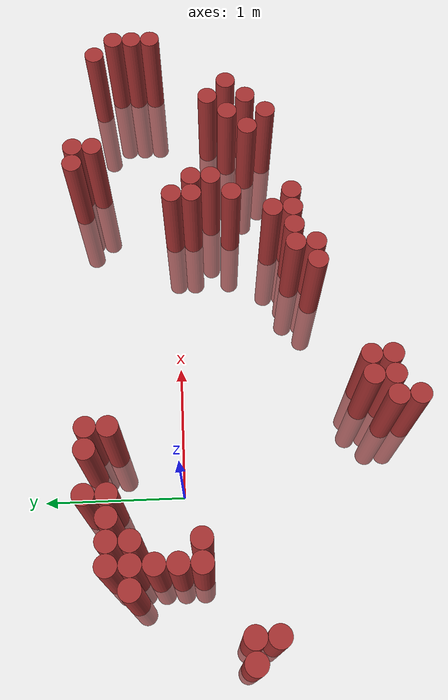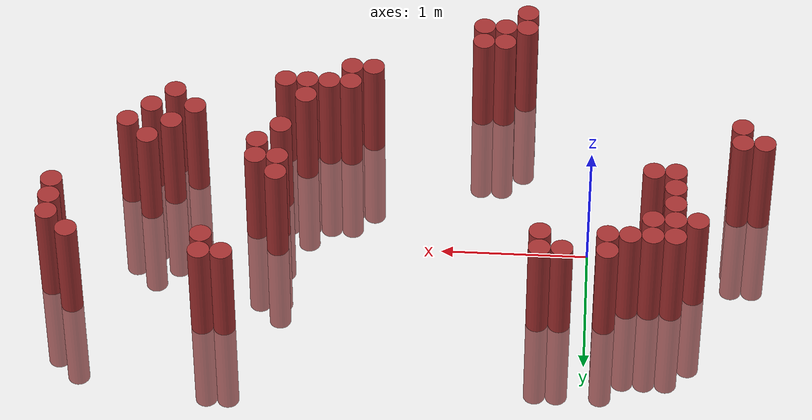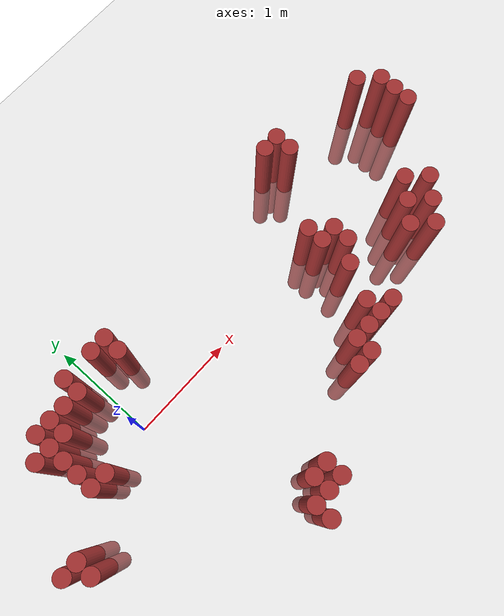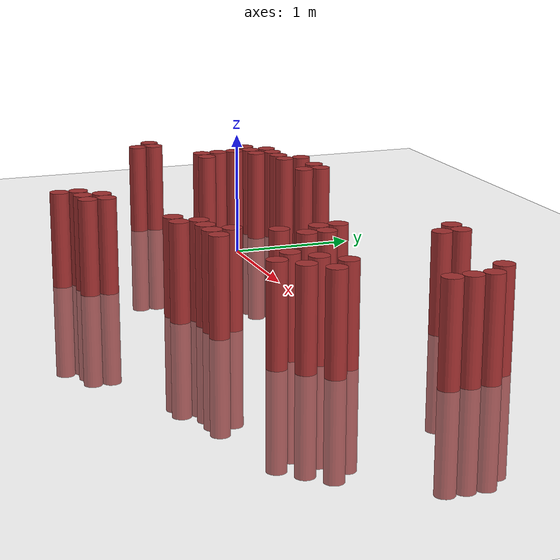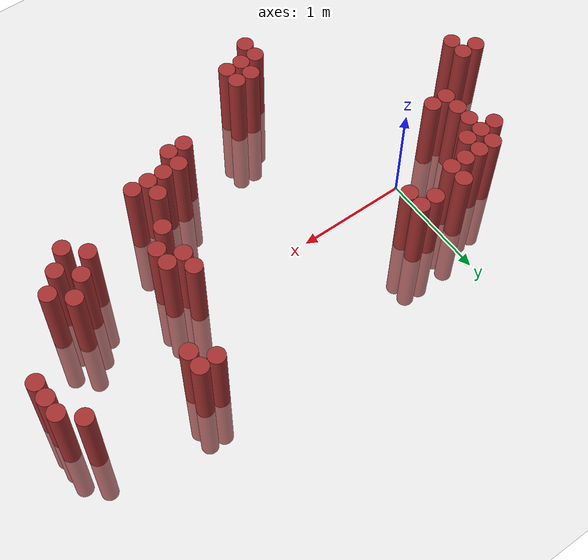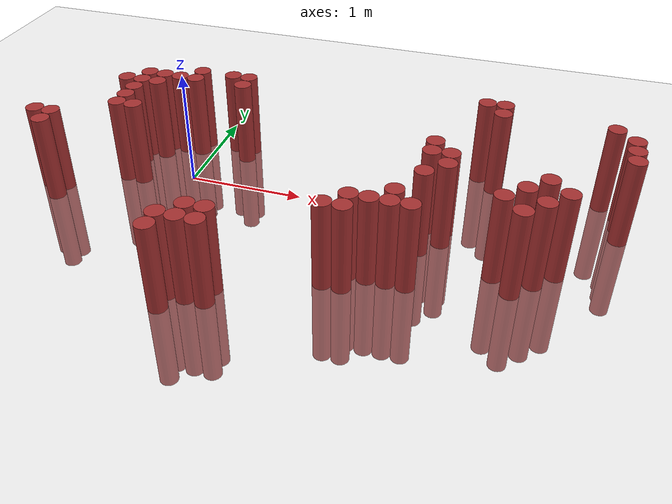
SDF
<sdf version="1.6">
 <world name="default">
  <model name="ground_plane">
   <static>1</static>
   <link name="link">
    <collision name="collision">
     <geometry><plane><normal>0 0 1</normal><size>100 100</size></plane></geometry>
     <surface><friction><ode><mu>100</mu><mu2>50</mu2></ode></friction></surface>
    </collision>
    <visual name="visual">
     <cast_shadows>0</cast_shadows>
     <geometry><plane><normal>0 0 1</normal><size>100 100</size></plane></geometry>
     <material>
      <script><uri>file://media/materials/scripts/gazebo.material</uri><name>Gazebo/Grey</name></script>
     </material>
    </visual>
   </link>
  </model>
  <model name="unit_cylinder_326">
   <static>1</static>
   <pose>-1.175000 -0.425000 0.000000 0.000000 0.000000 0.000000</pose>
   <link name="link">
    <inertial>
     <mass>1</mass>
     <inertia><ixx>0.145833</ixx><ixy>0</ixy><ixz>0</ixz><iyy>0.145833</iyy><iyz>0</iyz><izz>0.125</izz></inertia>
    </inertial>
    <collision name="collision">
     <geometry><cylinder><radius>0.075000</radius><length>1.5</length></cylinder></geometry>
    </collision>
    <visual name="visual">
     <geometry><cylinder><radius>0.075000</radius><length>1.5</length></cylinder></geometry>
     <material>
      <ambient>0.648000 0.192000 0.192000 1</ambient>
      <diffuse>0.648000 0.192000 0.192000 1</diffuse>
     </material>
     <material>
      <script><name>Gazebo/Grey</name><uri>file://media/materials/scripts/gazebo.material</uri></script>
     </material>
    </visual>
   </link>
  </model>
  <model name="unit_cylinder_328">
   <static>1</static>
   <pose>-1.025000 -0.575000 0.000000 0.000000 0.000000 0.000000</pose>
   <link name="link">
    <inertial>
     <mass>1</mass>
     <inertia><ixx>0.145833</ixx><ixy>0</ixy><ixz>0</ixz><iyy>0.145833</iyy><iyz>0</iyz><izz>0.125</izz></inertia>
    </inertial>
    <collision name="collision">
     <geometry><cylinder><radius>0.075000</radius><length>1.5</length></cylinder></geometry>
    </collision>
    <visual name="visual">
     <geometry><cylinder><radius>0.075000</radius><length>1.5</length></cylinder></geometry>
     <material>
      <ambient>0.648000 0.192000 0.192000 1</ambient>
      <diffuse>0.648000 0.192000 0.192000 1</diffuse>
     </material>
     <material>
      <script><name>Gazebo/Grey</name><uri>file://media/materials/scripts/gazebo.material</uri></script>
     </material>
    </visual>
   </link>
  </model>
  <model name="unit_cylinder_329">
   <static>1</static>
   <pose>-1.025000 -0.425000 0.000000 0.000000 0.000000 0.000000</pose>
   <link name="link">
    <inertial>
     <mass>1</mass>
     <inertia><ixx>0.145833</ixx><ixy>0</ixy><ixz>0</ixz><iyy>0.145833</iyy><iyz>0</iyz><izz>0.125</izz></inertia>
    </inertial>
    <collision name="collision">
     <geometry><cylinder><radius>0.075000</radius><length>1.5</length></cylinder></geometry>
    </collision>
    <visual name="visual">
     <geometry><cylinder><radius>0.075000</radius><length>1.5</length></cylinder></geometry>
     <material>
      <ambient>0.648000 0.192000 0.192000 1</ambient>
      <diffuse>0.648000 0.192000 0.192000 1</diffuse>
     </material>
     <material>
      <script><name>Gazebo/Grey</name><uri>file://media/materials/scripts/gazebo.material</uri></script>
     </material>
    </visual>
   </link>
  </model>
  <model name="unit_cylinder_331">
   <static>1</static>
   <pose>-0.725000 0.325000 0.000000 0.000000 0.000000 0.000000</pose>
   <link name="link">
    <inertial>
     <mass>1</mass>
     <inertia><ixx>0.145833</ixx><ixy>0</ixy><ixz>0</ixz><iyy>0.145833</iyy><iyz>0</iyz><izz>0.125</izz></inertia>
    </inertial>
    <collision name="collision">
     <geometry><cylinder><radius>0.075000</radius><length>1.5</length></cylinder></geometry>
    </collision>
    <visual name="visual">
     <geometry><cylinder><radius>0.075000</radius><length>1.5</length></cylinder></geometry>
     <material>
      <ambient>0.648000 0.192000 0.192000 1</ambient>
      <diffuse>0.648000 0.192000 0.192000 1</diffuse>
     </material>
     <material>
      <script><name>Gazebo/Grey</name><uri>file://media/materials/scripts/gazebo.material</uri></script>
     </material>
    </visual>
   </link>
  </model>
  <model name="unit_cylinder_333">
   <static>1</static>
   <pose>-0.575000 -0.125000 0.000000 0.000000 0.000000 0.000000</pose>
   <link name="link">
    <inertial>
     <mass>1</mass>
     <inertia><ixx>0.145833</ixx><ixy>0</ixy><ixz>0</ixz><iyy>0.145833</iyy><iyz>0</iyz><izz>0.125</izz></inertia>
    </inertial>
    <collision name="collision">
     <geometry><cylinder><radius>0.075000</radius><length>1.5</length></cylinder></geometry>
    </collision>
    <visual name="visual">
     <geometry><cylinder><radius>0.075000</radius><length>1.5</length></cylinder></geometry>
     <material>
      <ambient>0.648000 0.192000 0.192000 1</ambient>
      <diffuse>0.648000 0.192000 0.192000 1</diffuse>
     </material>
     <material>
      <script><name>Gazebo/Grey</name><uri>file://media/materials/scripts/gazebo.material</uri></script>
     </material>
    </visual>
   </link>
  </model>
  <model name="unit_cylinder_334">
   <static>1</static>
   <pose>-0.575000 0.025000 0.000000 0.000000 0.000000 0.000000</pose>
   <link name="link">
    <inertial>
     <mass>1</mass>
     <inertia><ixx>0.145833</ixx><ixy>0</ixy><ixz>0</ixz><iyy>0.145833</iyy><iyz>0</iyz><izz>0.125</izz></inertia>
    </inertial>
    <collision name="collision">
     <geometry><cylinder><radius>0.075000</radius><length>1.5</length></cylinder></geometry>
    </collision>
    <visual name="visual">
     <geometry><cylinder><radius>0.075000</radius><length>1.5</length></cylinder></geometry>
     <material>
      <ambient>0.648000 0.192000 0.192000 1</ambient>
      <diffuse>0.648000 0.192000 0.192000 1</diffuse>
     </material>
     <material>
      <script><name>Gazebo/Grey</name><uri>file://media/materials/scripts/gazebo.material</uri></script>
     </material>
    </visual>
   </link>
  </model>
  <model name="unit_cylinder_335">
   <static>1</static>
   <pose>-0.575000 0.175000 0.000000 0.000000 0.000000 0.000000</pose>
   <link name="link">
    <inertial>
     <mass>1</mass>
     <inertia><ixx>0.145833</ixx><ixy>0</ixy><ixz>0</ixz><iyy>0.145833</iyy><iyz>0</iyz><izz>0.125</izz></inertia>
    </inertial>
    <collision name="collision">
     <geometry><cylinder><radius>0.075000</radius><length>1.5</length></cylinder></geometry>
    </collision>
    <visual name="visual">
     <geometry><cylinder><radius>0.075000</radius><length>1.5</length></cylinder></geometry>
     <material>
      <ambient>0.648000 0.192000 0.192000 1</ambient>
      <diffuse>0.648000 0.192000 0.192000 1</diffuse>
     </material>
     <material>
      <script><name>Gazebo/Grey</name><uri>file://media/materials/scripts/gazebo.material</uri></script>
     </material>
    </visual>
   </link>
  </model>
  <model name="unit_cylinder_336">
   <static>1</static>
   <pose>-0.575000 0.325000 0.000000 0.000000 0.000000 0.000000</pose>
   <link name="link">
    <inertial>
     <mass>1</mass>
     <inertia><ixx>0.145833</ixx><ixy>0</ixy><ixz>0</ixz><iyy>0.145833</iyy><iyz>0</iyz><izz>0.125</izz></inertia>
    </inertial>
    <collision name="collision">
     <geometry><cylinder><radius>0.075000</radius><length>1.5</length></cylinder></geometry>
    </collision>
    <visual name="visual">
     <geometry><cylinder><radius>0.075000</radius><length>1.5</length></cylinder></geometry>
     <material>
      <ambient>0.648000 0.192000 0.192000 1</ambient>
      <diffuse>0.648000 0.192000 0.192000 1</diffuse>
     </material>
     <material>
      <script><name>Gazebo/Grey</name><uri>file://media/materials/scripts/gazebo.material</uri></script>
     </material>
    </visual>
   </link>
  </model>
  <model name="unit_cylinder_337">
   <static>1</static>
   <pose>-0.575000 0.475000 0.000000 0.000000 0.000000 0.000000</pose>
   <link name="link">
    <inertial>
     <mass>1</mass>
     <inertia><ixx>0.145833</ixx><ixy>0</ixy><ixz>0</ixz><iyy>0.145833</iyy><iyz>0</iyz><izz>0.125</izz></inertia>
    </inertial>
    <collision name="collision">
     <geometry><cylinder><radius>0.075000</radius><length>1.5</length></cylinder></geometry>
    </collision>
    <visual name="visual">
     <geometry><cylinder><radius>0.075000</radius><length>1.5</length></cylinder></geometry>
     <material>
      <ambient>0.648000 0.192000 0.192000 1</ambient>
      <diffuse>0.648000 0.192000 0.192000 1</diffuse>
     </material>
     <material>
      <script><name>Gazebo/Grey</name><uri>file://media/materials/scripts/gazebo.material</uri></script>
     </material>
    </visual>
   </link>
  </model>
  <model name="unit_cylinder_340">
   <static>1</static>
   <pose>-0.425000 -0.125000 0.000000 0.000000 0.000000 0.000000</pose>
   <link name="link">
    <inertial>
     <mass>1</mass>
     <inertia><ixx>0.145833</ixx><ixy>0</ixy><ixz>0</ixz><iyy>0.145833</iyy><iyz>0</iyz><izz>0.125</izz></inertia>
    </inertial>
    <collision name="collision">
     <geometry><cylinder><radius>0.075000</radius><length>1.5</length></cylinder></geometry>
    </collision>
    <visual name="visual">
     <geometry><cylinder><radius>0.075000</radius><length>1.5</length></cylinder></geometry>
     <material>
      <ambient>0.648000 0.192000 0.192000 1</ambient>
      <diffuse>0.648000 0.192000 0.192000 1</diffuse>
     </material>
     <material>
      <script><name>Gazebo/Grey</name><uri>file://media/materials/scripts/gazebo.material</uri></script>
     </material>
    </visual>
   </link>
  </model>
  <model name="unit_cylinder_341">
   <static>1</static>
   <pose>-0.425000 0.325000 0.000000 0.000000 0.000000 0.000000</pose>
   <link name="link">
    <inertial>
     <mass>1</mass>
     <inertia><ixx>0.145833</ixx><ixy>0</ixy><ixz>0</ixz><iyy>0.145833</iyy><iyz>0</iyz><izz>0.125</izz></inertia>
    </inertial>
    <collision name="collision">
     <geometry><cylinder><radius>0.075000</radius><length>1.5</length></cylinder></geometry>
    </collision>
    <visual name="visual">
     <geometry><cylinder><radius>0.075000</radius><length>1.5</length></cylinder></geometry>
     <material>
      <ambient>0.648000 0.192000 0.192000 1</ambient>
      <diffuse>0.648000 0.192000 0.192000 1</diffuse>
     </material>
     <material>
      <script><name>Gazebo/Grey</name><uri>file://media/materials/scripts/gazebo.material</uri></script>
     </material>
    </visual>
   </link>
  </model>
  <model name="unit_cylinder_342">
   <static>1</static>
   <pose>-0.425000 0.475000 0.000000 0.000000 0.000000 0.000000</pose>
   <link name="link">
    <inertial>
     <mass>1</mass>
     <inertia><ixx>0.145833</ixx><ixy>0</ixy><ixz>0</ixz><iyy>0.145833</iyy><iyz>0</iyz><izz>0.125</izz></inertia>
    </inertial>
    <collision name="collision">
     <geometry><cylinder><radius>0.075000</radius><length>1.5</length></cylinder></geometry>
    </collision>
    <visual name="visual">
     <geometry><cylinder><radius>0.075000</radius><length>1.5</length></cylinder></geometry>
     <material>
      <ambient>0.648000 0.192000 0.192000 1</ambient>
      <diffuse>0.648000 0.192000 0.192000 1</diffuse>
     </material>
     <material>
      <script><name>Gazebo/Grey</name><uri>file://media/materials/scripts/gazebo.material</uri></script>
     </material>
    </visual>
   </link>
  </model>
  <model name="unit_cylinder_346">
   <static>1</static>
   <pose>-0.275000 0.475000 0.000000 0.000000 0.000000 0.000000</pose>
   <link name="link">
    <inertial>
     <mass>1</mass>
     <inertia><ixx>0.145833</ixx><ixy>0</ixy><ixz>0</ixz><iyy>0.145833</iyy><iyz>0</iyz><izz>0.125</izz></inertia>
    </inertial>
    <collision name="collision">
     <geometry><cylinder><radius>0.075000</radius><length>1.5</length></cylinder></geometry>
    </collision>
    <visual name="visual">
     <geometry><cylinder><radius>0.075000</radius><length>1.5</length></cylinder></geometry>
     <material>
      <ambient>0.648000 0.192000 0.192000 1</ambient>
      <diffuse>0.648000 0.192000 0.192000 1</diffuse>
     </material>
     <material>
      <script><name>Gazebo/Grey</name><uri>file://media/materials/scripts/gazebo.material</uri></script>
     </material>
    </visual>
   </link>
  </model>
  <model name="unit_cylinder_351">
   <static>1</static>
   <pose>-0.125000 0.475000 0.000000 0.000000 0.000000 0.000000</pose>
   <link name="link">
    <inertial>
     <mass>1</mass>
     <inertia><ixx>0.145833</ixx><ixy>0</ixy><ixz>0</ixz><iyy>0.145833</iyy><iyz>0</iyz><izz>0.125</izz></inertia>
    </inertial>
    <collision name="collision">
     <geometry><cylinder><radius>0.075000</radius><length>1.5</length></cylinder></geometry>
    </collision>
    <visual name="visual">
     <geometry><cylinder><radius>0.075000</radius><length>1.5</length></cylinder></geometry>
     <material>
      <ambient>0.648000 0.192000 0.192000 1</ambient>
      <diffuse>0.648000 0.192000 0.192000 1</diffuse>
     </material>
     <material>
      <script><name>Gazebo/Grey</name><uri>file://media/materials/scripts/gazebo.material</uri></script>
     </material>
    </visual>
   </link>
  </model>
  <model name="unit_cylinder_352">
   <static>1</static>
   <pose>-0.125000 0.625000 0.000000 0.000000 0.000000 0.000000</pose>
   <link name="link">
    <inertial>
     <mass>1</mass>
     <inertia><ixx>0.145833</ixx><ixy>0</ixy><ixz>0</ixz><iyy>0.145833</iyy><iyz>0</iyz><izz>0.125</izz></inertia>
    </inertial>
    <collision name="collision">
     <geometry><cylinder><radius>0.075000</radius><length>1.5</length></cylinder></geometry>
    </collision>
    <visual name="visual">
     <geometry><cylinder><radius>0.075000</radius><length>1.5</length></cylinder></geometry>
     <material>
      <ambient>0.648000 0.192000 0.192000 1</ambient>
      <diffuse>0.648000 0.192000 0.192000 1</diffuse>
     </material>
     <material>
      <script><name>Gazebo/Grey</name><uri>file://media/materials/scripts/gazebo.material</uri></script>
     </material>
    </visual>
   </link>
  </model>
  <model name="unit_cylinder_359">
   <static>1</static>
   <pose>0.175000 0.625000 0.000000 0.000000 0.000000 0.000000</pose>
   <link name="link">
    <inertial>
     <mass>1</mass>
     <inertia><ixx>0.145833</ixx><ixy>0</ixy><ixz>0</ixz><iyy>0.145833</iyy><iyz>0</iyz><izz>0.125</izz></inertia>
    </inertial>
    <collision name="collision">
     <geometry><cylinder><radius>0.075000</radius><length>1.5</length></cylinder></geometry>
    </collision>
    <visual name="visual">
     <geometry><cylinder><radius>0.075000</radius><length>1.5</length></cylinder></geometry>
     <material>
      <ambient>0.648000 0.192000 0.192000 1</ambient>
      <diffuse>0.648000 0.192000 0.192000 1</diffuse>
     </material>
     <material>
      <script><name>Gazebo/Grey</name><uri>file://media/materials/scripts/gazebo.material</uri></script>
     </material>
    </visual>
   </link>
  </model>
  <model name="unit_cylinder_362">
   <static>1</static>
   <pose>0.325000 0.475000 0.000000 0.000000 0.000000 0.000000</pose>
   <link name="link">
    <inertial>
     <mass>1</mass>
     <inertia><ixx>0.145833</ixx><ixy>0</ixy><ixz>0</ixz><iyy>0.145833</iyy><iyz>0</iyz><izz>0.125</izz></inertia>
    </inertial>
    <collision name="collision">
     <geometry><cylinder><radius>0.075000</radius><length>1.5</length></cylinder></geometry>
    </collision>
    <visual name="visual">
     <geometry><cylinder><radius>0.075000</radius><length>1.5</length></cylinder></geometry>
     <material>
      <ambient>0.648000 0.192000 0.192000 1</ambient>
      <diffuse>0.648000 0.192000 0.192000 1</diffuse>
     </material>
     <material>
      <script><name>Gazebo/Grey</name><uri>file://media/materials/scripts/gazebo.material</uri></script>
     </material>
    </visual>
   </link>
  </model>
  <model name="unit_cylinder_363">
   <static>1</static>
   <pose>0.325000 0.625000 0.000000 0.000000 0.000000 0.000000</pose>
   <link name="link">
    <inertial>
     <mass>1</mass>
     <inertia><ixx>0.145833</ixx><ixy>0</ixy><ixz>0</ixz><iyy>0.145833</iyy><iyz>0</iyz><izz>0.125</izz></inertia>
    </inertial>
    <collision name="collision">
     <geometry><cylinder><radius>0.075000</radius><length>1.5</length></cylinder></geometry>
    </collision>
    <visual name="visual">
     <geometry><cylinder><radius>0.075000</radius><length>1.5</length></cylinder></geometry>
     <material>
      <ambient>0.648000 0.192000 0.192000 1</ambient>
      <diffuse>0.648000 0.192000 0.192000 1</diffuse>
     </material>
     <material>
      <script><name>Gazebo/Grey</name><uri>file://media/materials/scripts/gazebo.material</uri></script>
     </material>
    </visual>
   </link>
  </model>
  <model name="unit_cylinder_366">
   <static>1</static>
   <pose>0.475000 -1.625000 0.000000 0.000000 0.000000 0.000000</pose>
   <link name="link">
    <inertial>
     <mass>1</mass>
     <inertia><ixx>0.145833</ixx><ixy>0</ixy><ixz>0</ixz><iyy>0.145833</iyy><iyz>0</iyz><izz>0.125</izz></inertia>
    </inertial>
    <collision name="collision">
     <geometry><cylinder><radius>0.075000</radius><length>1.5</length></cylinder></geometry>
    </collision>
    <visual name="visual">
     <geometry><cylinder><radius>0.075000</radius><length>1.5</length></cylinder></geometry>
     <material>
      <ambient>0.648000 0.192000 0.192000 1</ambient>
      <diffuse>0.648000 0.192000 0.192000 1</diffuse>
     </material>
     <material>
      <script><name>Gazebo/Grey</name><uri>file://media/materials/scripts/gazebo.material</uri></script>
     </material>
    </visual>
   </link>
  </model>
  <model name="unit_cylinder_367">
   <static>1</static>
   <pose>0.475000 -1.475000 0.000000 0.000000 0.000000 0.000000</pose>
   <link name="link">
    <inertial>
     <mass>1</mass>
     <inertia><ixx>0.145833</ixx><ixy>0</ixy><ixz>0</ixz><iyy>0.145833</iyy><iyz>0</iyz><izz>0.125</izz></inertia>
    </inertial>
    <collision name="collision">
     <geometry><cylinder><radius>0.075000</radius><length>1.5</length></cylinder></geometry>
    </collision>
    <visual name="visual">
     <geometry><cylinder><radius>0.075000</radius><length>1.5</length></cylinder></geometry>
     <material>
      <ambient>0.648000 0.192000 0.192000 1</ambient>
      <diffuse>0.648000 0.192000 0.192000 1</diffuse>
     </material>
     <material>
      <script><name>Gazebo/Grey</name><uri>file://media/materials/scripts/gazebo.material</uri></script>
     </material>
    </visual>
   </link>
  </model>
  <model name="unit_cylinder_369">
   <static>1</static>
   <pose>0.625000 -1.475000 0.000000 0.000000 0.000000 0.000000</pose>
   <link name="link">
    <inertial>
     <mass>1</mass>
     <inertia><ixx>0.145833</ixx><ixy>0</ixy><ixz>0</ixz><iyy>0.145833</iyy><iyz>0</iyz><izz>0.125</izz></inertia>
    </inertial>
    <collision name="collision">
     <geometry><cylinder><radius>0.075000</radius><length>1.5</length></cylinder></geometry>
    </collision>
    <visual name="visual">
     <geometry><cylinder><radius>0.075000</radius><length>1.5</length></cylinder></geometry>
     <material>
      <ambient>0.648000 0.192000 0.192000 1</ambient>
      <diffuse>0.648000 0.192000 0.192000 1</diffuse>
     </material>
     <material>
      <script><name>Gazebo/Grey</name><uri>file://media/materials/scripts/gazebo.material</uri></script>
     </material>
    </visual>
   </link>
  </model>
  <model name="unit_cylinder_370">
   <static>1</static>
   <pose>0.625000 -1.325000 0.000000 0.000000 0.000000 0.000000</pose>
   <link name="link">
    <inertial>
     <mass>1</mass>
     <inertia><ixx>0.145833</ixx><ixy>0</ixy><ixz>0</ixz><iyy>0.145833</iyy><iyz>0</iyz><izz>0.125</izz></inertia>
    </inertial>
    <collision name="collision">
     <geometry><cylinder><radius>0.075000</radius><length>1.5</length></cylinder></geometry>
    </collision>
    <visual name="visual">
     <geometry><cylinder><radius>0.075000</radius><length>1.5</length></cylinder></geometry>
     <material>
      <ambient>0.648000 0.192000 0.192000 1</ambient>
      <diffuse>0.648000 0.192000 0.192000 1</diffuse>
     </material>
     <material>
      <script><name>Gazebo/Grey</name><uri>file://media/materials/scripts/gazebo.material</uri></script>
     </material>
    </visual>
   </link>
  </model>
  <model name="unit_cylinder_371">
   <static>1</static>
   <pose>0.775000 -1.475000 0.000000 0.000000 0.000000 0.000000</pose>
   <link name="link">
    <inertial>
     <mass>1</mass>
     <inertia><ixx>0.145833</ixx><ixy>0</ixy><ixz>0</ixz><iyy>0.145833</iyy><iyz>0</iyz><izz>0.125</izz></inertia>
    </inertial>
    <collision name="collision">
     <geometry><cylinder><radius>0.075000</radius><length>1.5</length></cylinder></geometry>
    </collision>
    <visual name="visual">
     <geometry><cylinder><radius>0.075000</radius><length>1.5</length></cylinder></geometry>
     <material>
      <ambient>0.648000 0.192000 0.192000 1</ambient>
      <diffuse>0.648000 0.192000 0.192000 1</diffuse>
     </material>
     <material>
      <script><name>Gazebo/Grey</name><uri>file://media/materials/scripts/gazebo.material</uri></script>
     </material>
    </visual>
   </link>
  </model>
  <model name="unit_cylinder_372">
   <static>1</static>
   <pose>0.775000 -1.325000 0.000000 0.000000 0.000000 0.000000</pose>
   <link name="link">
    <inertial>
     <mass>1</mass>
     <inertia><ixx>0.145833</ixx><ixy>0</ixy><ixz>0</ixz><iyy>0.145833</iyy><iyz>0</iyz><izz>0.125</izz></inertia>
    </inertial>
    <collision name="collision">
     <geometry><cylinder><radius>0.075000</radius><length>1.5</length></cylinder></geometry>
    </collision>
    <visual name="visual">
     <geometry><cylinder><radius>0.075000</radius><length>1.5</length></cylinder></geometry>
     <material>
      <ambient>0.648000 0.192000 0.192000 1</ambient>
      <diffuse>0.648000 0.192000 0.192000 1</diffuse>
     </material>
     <material>
      <script><name>Gazebo/Grey</name><uri>file://media/materials/scripts/gazebo.material</uri></script>
     </material>
    </visual>
   </link>
  </model>
  <model name="unit_cylinder_373">
   <static>1</static>
   <pose>1.525000 -1.025000 0.000000 0.000000 0.000000 0.000000</pose>
   <link name="link">
    <inertial>
     <mass>1</mass>
     <inertia><ixx>0.145833</ixx><ixy>0</ixy><ixz>0</ixz><iyy>0.145833</iyy><iyz>0</iyz><izz>0.125</izz></inertia>
    </inertial>
    <collision name="collision">
     <geometry><cylinder><radius>0.075000</radius><length>1.5</length></cylinder></geometry>
    </collision>
    <visual name="visual">
     <geometry><cylinder><radius>0.075000</radius><length>1.5</length></cylinder></geometry>
     <material>
      <ambient>0.648000 0.192000 0.192000 1</ambient>
      <diffuse>0.648000 0.192000 0.192000 1</diffuse>
     </material>
     <material>
      <script><name>Gazebo/Grey</name><uri>file://media/materials/scripts/gazebo.material</uri></script>
     </material>
    </visual>
   </link>
  </model>
  <model name="unit_cylinder_374">
   <static>1</static>
   <pose>1.675000 -1.025000 0.000000 0.000000 0.000000 0.000000</pose>
   <link name="link">
    <inertial>
     <mass>1</mass>
     <inertia><ixx>0.145833</ixx><ixy>0</ixy><ixz>0</ixz><iyy>0.145833</iyy><iyz>0</iyz><izz>0.125</izz></inertia>
    </inertial>
    <collision name="collision">
     <geometry><cylinder><radius>0.075000</radius><length>1.5</length></cylinder></geometry>
    </collision>
    <visual name="visual">
     <geometry><cylinder><radius>0.075000</radius><length>1.5</length></cylinder></geometry>
     <material>
      <ambient>0.648000 0.192000 0.192000 1</ambient>
      <diffuse>0.648000 0.192000 0.192000 1</diffuse>
     </material>
     <material>
      <script><name>Gazebo/Grey</name><uri>file://media/materials/scripts/gazebo.material</uri></script>
     </material>
    </visual>
   </link>
  </model>
  <model name="unit_cylinder_375">
   <static>1</static>
   <pose>1.675000 -0.875000 0.000000 0.000000 0.000000 0.000000</pose>
   <link name="link">
    <inertial>
     <mass>1</mass>
     <inertia><ixx>0.145833</ixx><ixy>0</ixy><ixz>0</ixz><iyy>0.145833</iyy><iyz>0</iyz><izz>0.125</izz></inertia>
    </inertial>
    <collision name="collision">
     <geometry><cylinder><radius>0.075000</radius><length>1.5</length></cylinder></geometry>
    </collision>
    <visual name="visual">
     <geometry><cylinder><radius>0.075000</radius><length>1.5</length></cylinder></geometry>
     <material>
      <ambient>0.648000 0.192000 0.192000 1</ambient>
      <diffuse>0.648000 0.192000 0.192000 1</diffuse>
     </material>
     <material>
      <script><name>Gazebo/Grey</name><uri>file://media/materials/scripts/gazebo.material</uri></script>
     </material>
    </visual>
   </link>
  </model>
  <model name="unit_cylinder_376">
   <static>1</static>
   <pose>1.825000 -0.875000 0.000000 0.000000 0.000000 0.000000</pose>
   <link name="link">
    <inertial>
     <mass>1</mass>
     <inertia><ixx>0.145833</ixx><ixy>0</ixy><ixz>0</ixz><iyy>0.145833</iyy><iyz>0</iyz><izz>0.125</izz></inertia>
    </inertial>
    <collision name="collision">
     <geometry><cylinder><radius>0.075000</radius><length>1.5</length></cylinder></geometry>
    </collision>
    <visual name="visual">
     <geometry><cylinder><radius>0.075000</radius><length>1.5</length></cylinder></geometry>
     <material>
      <ambient>0.648000 0.192000 0.192000 1</ambient>
      <diffuse>0.648000 0.192000 0.192000 1</diffuse>
     </material>
     <material>
      <script><name>Gazebo/Grey</name><uri>file://media/materials/scripts/gazebo.material</uri></script>
     </material>
    </visual>
   </link>
  </model>
  <model name="unit_cylinder_378">
   <static>1</static>
   <pose>1.975000 -0.875000 0.000000 0.000000 0.000000 0.000000</pose>
   <link name="link">
    <inertial>
     <mass>1</mass>
     <inertia><ixx>0.145833</ixx><ixy>0</ixy><ixz>0</ixz><iyy>0.145833</iyy><iyz>0</iyz><izz>0.125</izz></inertia>
    </inertial>
    <collision name="collision">
     <geometry><cylinder><radius>0.075000</radius><length>1.5</length></cylinder></geometry>
    </collision>
    <visual name="visual">
     <geometry><cylinder><radius>0.075000</radius><length>1.5</length></cylinder></geometry>
     <material>
      <ambient>0.648000 0.192000 0.192000 1</ambient>
      <diffuse>0.648000 0.192000 0.192000 1</diffuse>
     </material>
     <material>
      <script><name>Gazebo/Grey</name><uri>file://media/materials/scripts/gazebo.material</uri></script>
     </material>
    </visual>
   </link>
  </model>
  <model name="unit_cylinder_379">
   <static>1</static>
   <pose>1.975000 -0.725000 0.000000 0.000000 0.000000 0.000000</pose>
   <link name="link">
    <inertial>
     <mass>1</mass>
     <inertia><ixx>0.145833</ixx><ixy>0</ixy><ixz>0</ixz><iyy>0.145833</iyy><iyz>0</iyz><izz>0.125</izz></inertia>
    </inertial>
    <collision name="collision">
     <geometry><cylinder><radius>0.075000</radius><length>1.5</length></cylinder></geometry>
    </collision>
    <visual name="visual">
     <geometry><cylinder><radius>0.075000</radius><length>1.5</length></cylinder></geometry>
     <material>
      <ambient>0.648000 0.192000 0.192000 1</ambient>
      <diffuse>0.648000 0.192000 0.192000 1</diffuse>
     </material>
     <material>
      <script><name>Gazebo/Grey</name><uri>file://media/materials/scripts/gazebo.material</uri></script>
     </material>
    </visual>
   </link>
  </model>
  <model name="unit_cylinder_381">
   <static>1</static>
   <pose>2.125000 -0.875000 0.000000 0.000000 0.000000 0.000000</pose>
   <link name="link">
    <inertial>
     <mass>1</mass>
     <inertia><ixx>0.145833</ixx><ixy>0</ixy><ixz>0</ixz><iyy>0.145833</iyy><iyz>0</iyz><izz>0.125</izz></inertia>
    </inertial>
    <collision name="collision">
     <geometry><cylinder><radius>0.075000</radius><length>1.5</length></cylinder></geometry>
    </collision>
    <visual name="visual">
     <geometry><cylinder><radius>0.075000</radius><length>1.5</length></cylinder></geometry>
     <material>
      <ambient>0.648000 0.192000 0.192000 1</ambient>
      <diffuse>0.648000 0.192000 0.192000 1</diffuse>
     </material>
     <material>
      <script><name>Gazebo/Grey</name><uri>file://media/materials/scripts/gazebo.material</uri></script>
     </material>
    </visual>
   </link>
  </model>
  <model name="unit_cylinder_382">
   <static>1</static>
   <pose>2.125000 -0.425000 0.000000 0.000000 0.000000 0.000000</pose>
   <link name="link">
    <inertial>
     <mass>1</mass>
     <inertia><ixx>0.145833</ixx><ixy>0</ixy><ixz>0</ixz><iyy>0.145833</iyy><iyz>0</iyz><izz>0.125</izz></inertia>
    </inertial>
    <collision name="collision">
     <geometry><cylinder><radius>0.075000</radius><length>1.5</length></cylinder></geometry>
    </collision>
    <visual name="visual">
     <geometry><cylinder><radius>0.075000</radius><length>1.5</length></cylinder></geometry>
     <material>
      <ambient>0.648000 0.192000 0.192000 1</ambient>
      <diffuse>0.648000 0.192000 0.192000 1</diffuse>
     </material>
     <material>
      <script><name>Gazebo/Grey</name><uri>file://media/materials/scripts/gazebo.material</uri></script>
     </material>
    </visual>
   </link>
  </model>
  <model name="unit_cylinder_383">
   <static>1</static>
   <pose>2.125000 -0.125000 0.000000 0.000000 0.000000 0.000000</pose>
   <link name="link">
    <inertial>
     <mass>1</mass>
     <inertia><ixx>0.145833</ixx><ixy>0</ixy><ixz>0</ixz><iyy>0.145833</iyy><iyz>0</iyz><izz>0.125</izz></inertia>
    </inertial>
    <collision name="collision">
     <geometry><cylinder><radius>0.075000</radius><length>1.5</length></cylinder></geometry>
    </collision>
    <visual name="visual">
     <geometry><cylinder><radius>0.075000</radius><length>1.5</length></cylinder></geometry>
     <material>
      <ambient>0.648000 0.192000 0.192000 1</ambient>
      <diffuse>0.648000 0.192000 0.192000 1</diffuse>
     </material>
     <material>
      <script><name>Gazebo/Grey</name><uri>file://media/materials/scripts/gazebo.material</uri></script>
     </material>
    </visual>
   </link>
  </model>
  <model name="unit_cylinder_384">
   <static>1</static>
   <pose>2.125000 0.025000 0.000000 0.000000 0.000000 0.000000</pose>
   <link name="link">
    <inertial>
     <mass>1</mass>
     <inertia><ixx>0.145833</ixx><ixy>0</ixy><ixz>0</ixz><iyy>0.145833</iyy><iyz>0</iyz><izz>0.125</izz></inertia>
    </inertial>
    <collision name="collision">
     <geometry><cylinder><radius>0.075000</radius><length>1.5</length></cylinder></geometry>
    </collision>
    <visual name="visual">
     <geometry><cylinder><radius>0.075000</radius><length>1.5</length></cylinder></geometry>
     <material>
      <ambient>0.648000 0.192000 0.192000 1</ambient>
      <diffuse>0.648000 0.192000 0.192000 1</diffuse>
     </material>
     <material>
      <script><name>Gazebo/Grey</name><uri>file://media/materials/scripts/gazebo.material</uri></script>
     </material>
    </visual>
   </link>
  </model>
  <model name="unit_cylinder_386">
   <static>1</static>
   <pose>2.275000 -0.275000 0.000000 0.000000 0.000000 0.000000</pose>
   <link name="link">
    <inertial>
     <mass>1</mass>
     <inertia><ixx>0.145833</ixx><ixy>0</ixy><ixz>0</ixz><iyy>0.145833</iyy><iyz>0</iyz><izz>0.125</izz></inertia>
    </inertial>
    <collision name="collision">
     <geometry><cylinder><radius>0.075000</radius><length>1.5</length></cylinder></geometry>
    </collision>
    <visual name="visual">
     <geometry><cylinder><radius>0.075000</radius><length>1.5</length></cylinder></geometry>
     <material>
      <ambient>0.648000 0.192000 0.192000 1</ambient>
      <diffuse>0.648000 0.192000 0.192000 1</diffuse>
     </material>
     <material>
      <script><name>Gazebo/Grey</name><uri>file://media/materials/scripts/gazebo.material</uri></script>
     </material>
    </visual>
   </link>
  </model>
  <model name="unit_cylinder_387">
   <static>1</static>
   <pose>2.275000 -0.125000 0.000000 0.000000 0.000000 0.000000</pose>
   <link name="link">
    <inertial>
     <mass>1</mass>
     <inertia><ixx>0.145833</ixx><ixy>0</ixy><ixz>0</ixz><iyy>0.145833</iyy><iyz>0</iyz><izz>0.125</izz></inertia>
    </inertial>
    <collision name="collision">
     <geometry><cylinder><radius>0.075000</radius><length>1.5</length></cylinder></geometry>
    </collision>
    <visual name="visual">
     <geometry><cylinder><radius>0.075000</radius><length>1.5</length></cylinder></geometry>
     <material>
      <ambient>0.648000 0.192000 0.192000 1</ambient>
      <diffuse>0.648000 0.192000 0.192000 1</diffuse>
     </material>
     <material>
      <script><name>Gazebo/Grey</name><uri>file://media/materials/scripts/gazebo.material</uri></script>
     </material>
    </visual>
   </link>
  </model>
  <model name="unit_cylinder_393">
   <static>1</static>
   <pose>2.425000 0.775000 0.000000 0.000000 0.000000 0.000000</pose>
   <link name="link">
    <inertial>
     <mass>1</mass>
     <inertia><ixx>0.145833</ixx><ixy>0</ixy><ixz>0</ixz><iyy>0.145833</iyy><iyz>0</iyz><izz>0.125</izz></inertia>
    </inertial>
    <collision name="collision">
     <geometry><cylinder><radius>0.075000</radius><length>1.5</length></cylinder></geometry>
    </collision>
    <visual name="visual">
     <geometry><cylinder><radius>0.075000</radius><length>1.5</length></cylinder></geometry>
     <material>
      <ambient>0.648000 0.192000 0.192000 1</ambient>
      <diffuse>0.648000 0.192000 0.192000 1</diffuse>
     </material>
     <material>
      <script><name>Gazebo/Grey</name><uri>file://media/materials/scripts/gazebo.material</uri></script>
     </material>
    </visual>
   </link>
  </model>
  <model name="unit_cylinder_398">
   <static>1</static>
   <pose>2.575000 0.625000 0.000000 0.000000 0.000000 0.000000</pose>
   <link name="link">
    <inertial>
     <mass>1</mass>
     <inertia><ixx>0.145833</ixx><ixy>0</ixy><ixz>0</ixz><iyy>0.145833</iyy><iyz>0</iyz><izz>0.125</izz></inertia>
    </inertial>
    <collision name="collision">
     <geometry><cylinder><radius>0.075000</radius><length>1.5</length></cylinder></geometry>
    </collision>
    <visual name="visual">
     <geometry><cylinder><radius>0.075000</radius><length>1.5</length></cylinder></geometry>
     <material>
      <ambient>0.648000 0.192000 0.192000 1</ambient>
      <diffuse>0.648000 0.192000 0.192000 1</diffuse>
     </material>
     <material>
      <script><name>Gazebo/Grey</name><uri>file://media/materials/scripts/gazebo.material</uri></script>
     </material>
    </visual>
   </link>
  </model>
  <model name="unit_cylinder_399">
   <static>1</static>
   <pose>2.575000 0.775000 0.000000 0.000000 0.000000 0.000000</pose>
   <link name="link">
    <inertial>
     <mass>1</mass>
     <inertia><ixx>0.145833</ixx><ixy>0</ixy><ixz>0</ixz><iyy>0.145833</iyy><iyz>0</iyz><izz>0.125</izz></inertia>
    </inertial>
    <collision name="collision">
     <geometry><cylinder><radius>0.075000</radius><length>1.5</length></cylinder></geometry>
    </collision>
    <visual name="visual">
     <geometry><cylinder><radius>0.075000</radius><length>1.5</length></cylinder></geometry>
     <material>
      <ambient>0.648000 0.192000 0.192000 1</ambient>
      <diffuse>0.648000 0.192000 0.192000 1</diffuse>
     </material>
     <material>
      <script><name>Gazebo/Grey</name><uri>file://media/materials/scripts/gazebo.material</uri></script>
     </material>
    </visual>
   </link>
  </model>
  <model name="unit_cylinder_402">
   <static>1</static>
   <pose>2.725000 -0.575000 0.000000 0.000000 0.000000 0.000000</pose>
   <link name="link">
    <inertial>
     <mass>1</mass>
     <inertia><ixx>0.145833</ixx><ixy>0</ixy><ixz>0</ixz><iyy>0.145833</iyy><iyz>0</iyz><izz>0.125</izz></inertia>
    </inertial>
    <collision name="collision">
     <geometry><cylinder><radius>0.075000</radius><length>1.5</length></cylinder></geometry>
    </collision>
    <visual name="visual">
     <geometry><cylinder><radius>0.075000</radius><length>1.5</length></cylinder></geometry>
     <material>
      <ambient>0.648000 0.192000 0.192000 1</ambient>
      <diffuse>0.648000 0.192000 0.192000 1</diffuse>
     </material>
     <material>
      <script><name>Gazebo/Grey</name><uri>file://media/materials/scripts/gazebo.material</uri></script>
     </material>
    </visual>
   </link>
  </model>
  <model name="unit_cylinder_405">
   <static>1</static>
   <pose>2.875000 -0.725000 0.000000 0.000000 0.000000 0.000000</pose>
   <link name="link">
    <inertial>
     <mass>1</mass>
     <inertia><ixx>0.145833</ixx><ixy>0</ixy><ixz>0</ixz><iyy>0.145833</iyy><iyz>0</iyz><izz>0.125</izz></inertia>
    </inertial>
    <collision name="collision">
     <geometry><cylinder><radius>0.075000</radius><length>1.5</length></cylinder></geometry>
    </collision>
    <visual name="visual">
     <geometry><cylinder><radius>0.075000</radius><length>1.5</length></cylinder></geometry>
     <material>
      <ambient>0.648000 0.192000 0.192000 1</ambient>
      <diffuse>0.648000 0.192000 0.192000 1</diffuse>
     </material>
     <material>
      <script><name>Gazebo/Grey</name><uri>file://media/materials/scripts/gazebo.material</uri></script>
     </material>
    </visual>
   </link>
  </model>
  <model name="unit_cylinder_406">
   <static>1</static>
   <pose>2.875000 -0.425000 0.000000 0.000000 0.000000 0.000000</pose>
   <link name="link">
    <inertial>
     <mass>1</mass>
     <inertia><ixx>0.145833</ixx><ixy>0</ixy><ixz>0</ixz><iyy>0.145833</iyy><iyz>0</iyz><izz>0.125</izz></inertia>
    </inertial>
    <collision name="collision">
     <geometry><cylinder><radius>0.075000</radius><length>1.5</length></cylinder></geometry>
    </collision>
    <visual name="visual">
     <geometry><cylinder><radius>0.075000</radius><length>1.5</length></cylinder></geometry>
     <material>
      <ambient>0.648000 0.192000 0.192000 1</ambient>
      <diffuse>0.648000 0.192000 0.192000 1</diffuse>
     </material>
     <material>
      <script><name>Gazebo/Grey</name><uri>file://media/materials/scripts/gazebo.material</uri></script>
     </material>
    </visual>
   </link>
  </model>
  <model name="unit_cylinder_412">
   <static>1</static>
   <pose>3.025000 -0.575000 0.000000 0.000000 0.000000 0.000000</pose>
   <link name="link">
    <inertial>
     <mass>1</mass>
     <inertia><ixx>0.145833</ixx><ixy>0</ixy><ixz>0</ixz><iyy>0.145833</iyy><iyz>0</iyz><izz>0.125</izz></inertia>
    </inertial>
    <collision name="collision">
     <geometry><cylinder><radius>0.075000</radius><length>1.5</length></cylinder></geometry>
    </collision>
    <visual name="visual">
     <geometry><cylinder><radius>0.075000</radius><length>1.5</length></cylinder></geometry>
     <material>
      <ambient>0.648000 0.192000 0.192000 1</ambient>
      <diffuse>0.648000 0.192000 0.192000 1</diffuse>
     </material>
     <material>
      <script><name>Gazebo/Grey</name><uri>file://media/materials/scripts/gazebo.material</uri></script>
     </material>
    </visual>
   </link>
  </model>
  <model name="unit_cylinder_413">
   <static>1</static>
   <pose>3.025000 -0.275000 0.000000 0.000000 0.000000 0.000000</pose>
   <link name="link">
    <inertial>
     <mass>1</mass>
     <inertia><ixx>0.145833</ixx><ixy>0</ixy><ixz>0</ixz><iyy>0.145833</iyy><iyz>0</iyz><izz>0.125</izz></inertia>
    </inertial>
    <collision name="collision">
     <geometry><cylinder><radius>0.075000</radius><length>1.5</length></cylinder></geometry>
    </collision>
    <visual name="visual">
     <geometry><cylinder><radius>0.075000</radius><length>1.5</length></cylinder></geometry>
     <material>
      <ambient>0.648000 0.192000 0.192000 1</ambient>
      <diffuse>0.648000 0.192000 0.192000 1</diffuse>
     </material>
     <material>
      <script><name>Gazebo/Grey</name><uri>file://media/materials/scripts/gazebo.material</uri></script>
     </material>
    </visual>
   </link>
  </model>
  <model name="unit_cylinder_423">
   <static>1</static>
   <pose>3.175000 -0.425000 0.000000 0.000000 0.000000 0.000000</pose>
   <link name="link">
    <inertial>
     <mass>1</mass>
     <inertia><ixx>0.145833</ixx><ixy>0</ixy><ixz>0</ixz><iyy>0.145833</iyy><iyz>0</iyz><izz>0.125</izz></inertia>
    </inertial>
    <collision name="collision">
     <geometry><cylinder><radius>0.075000</radius><length>1.5</length></cylinder></geometry>
    </collision>
    <visual name="visual">
     <geometry><cylinder><radius>0.075000</radius><length>1.5</length></cylinder></geometry>
     <material>
      <ambient>0.648000 0.192000 0.192000 1</ambient>
      <diffuse>0.648000 0.192000 0.192000 1</diffuse>
     </material>
     <material>
      <script><name>Gazebo/Grey</name><uri>file://media/materials/scripts/gazebo.material</uri></script>
     </material>
    </visual>
   </link>
  </model>
  <model name="unit_cylinder_426">
   <static>1</static>
   <pose>3.475000 0.625000 0.000000 0.000000 0.000000 0.000000</pose>
   <link name="link">
    <inertial>
     <mass>1</mass>
     <inertia><ixx>0.145833</ixx><ixy>0</ixy><ixz>0</ixz><iyy>0.145833</iyy><iyz>0</iyz><izz>0.125</izz></inertia>
    </inertial>
    <collision name="collision">
     <geometry><cylinder><radius>0.075000</radius><length>1.5</length></cylinder></geometry>
    </collision>
    <visual name="visual">
     <geometry><cylinder><radius>0.075000</radius><length>1.5</length></cylinder></geometry>
     <material>
      <ambient>0.648000 0.192000 0.192000 1</ambient>
      <diffuse>0.648000 0.192000 0.192000 1</diffuse>
     </material>
     <material>
      <script><name>Gazebo/Grey</name><uri>file://media/materials/scripts/gazebo.material</uri></script>
     </material>
    </visual>
   </link>
  </model>
  <model name="unit_cylinder_429">
   <static>1</static>
   <pose>3.625000 0.175000 0.000000 0.000000 0.000000 0.000000</pose>
   <link name="link">
    <inertial>
     <mass>1</mass>
     <inertia><ixx>0.145833</ixx><ixy>0</ixy><ixz>0</ixz><iyy>0.145833</iyy><iyz>0</iyz><izz>0.125</izz></inertia>
    </inertial>
    <collision name="collision">
     <geometry><cylinder><radius>0.075000</radius><length>1.5</length></cylinder></geometry>
    </collision>
    <visual name="visual">
     <geometry><cylinder><radius>0.075000</radius><length>1.5</length></cylinder></geometry>
     <material>
      <ambient>0.648000 0.192000 0.192000 1</ambient>
      <diffuse>0.648000 0.192000 0.192000 1</diffuse>
     </material>
     <material>
      <script><name>Gazebo/Grey</name><uri>file://media/materials/scripts/gazebo.material</uri></script>
     </material>
    </visual>
   </link>
  </model>
  <model name="unit_cylinder_430">
   <static>1</static>
   <pose>3.625000 0.325000 0.000000 0.000000 0.000000 0.000000</pose>
   <link name="link">
    <inertial>
     <mass>1</mass>
     <inertia><ixx>0.145833</ixx><ixy>0</ixy><ixz>0</ixz><iyy>0.145833</iyy><iyz>0</iyz><izz>0.125</izz></inertia>
    </inertial>
    <collision name="collision">
     <geometry><cylinder><radius>0.075000</radius><length>1.5</length></cylinder></geometry>
    </collision>
    <visual name="visual">
     <geometry><cylinder><radius>0.075000</radius><length>1.5</length></cylinder></geometry>
     <material>
      <ambient>0.648000 0.192000 0.192000 1</ambient>
      <diffuse>0.648000 0.192000 0.192000 1</diffuse>
     </material>
     <material>
      <script><name>Gazebo/Grey</name><uri>file://media/materials/scripts/gazebo.material</uri></script>
     </material>
    </visual>
   </link>
  </model>
  <model name="unit_cylinder_431">
   <static>1</static>
   <pose>3.625000 0.475000 0.000000 0.000000 0.000000 0.000000</pose>
   <link name="link">
    <inertial>
     <mass>1</mass>
     <inertia><ixx>0.145833</ixx><ixy>0</ixy><ixz>0</ixz><iyy>0.145833</iyy><iyz>0</iyz><izz>0.125</izz></inertia>
    </inertial>
    <collision name="collision">
     <geometry><cylinder><radius>0.075000</radius><length>1.5</length></cylinder></geometry>
    </collision>
    <visual name="visual">
     <geometry><cylinder><radius>0.075000</radius><length>1.5</length></cylinder></geometry>
     <material>
      <ambient>0.648000 0.192000 0.192000 1</ambient>
      <diffuse>0.648000 0.192000 0.192000 1</diffuse>
     </material>
     <material>
      <script><name>Gazebo/Grey</name><uri>file://media/materials/scripts/gazebo.material</uri></script>
     </material>
    </visual>
   </link>
  </model>
 </world>
</sdf>
